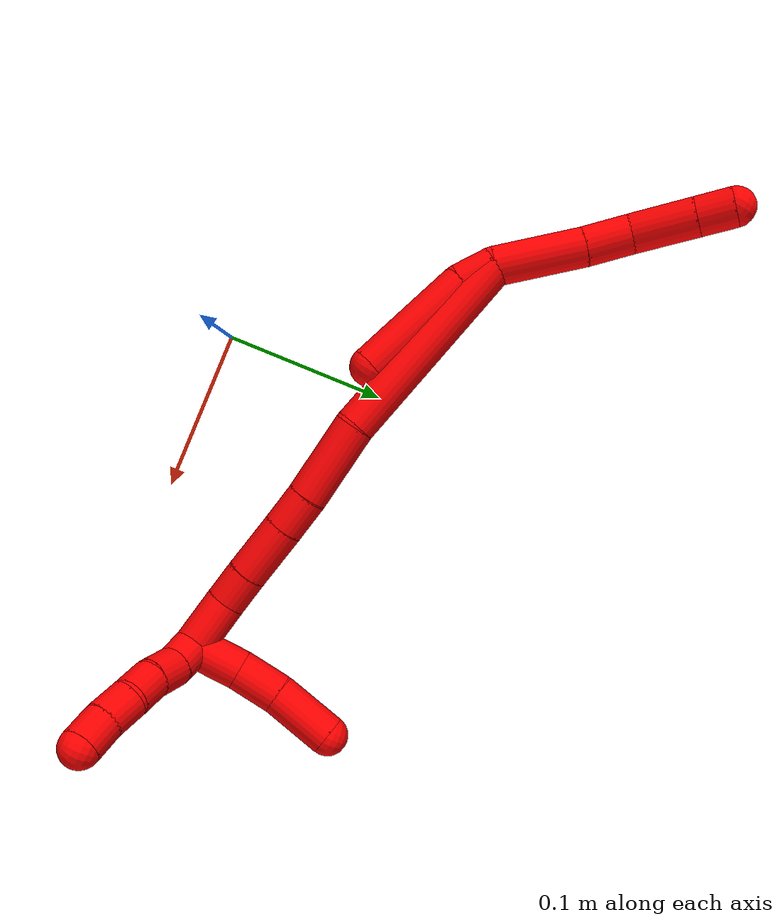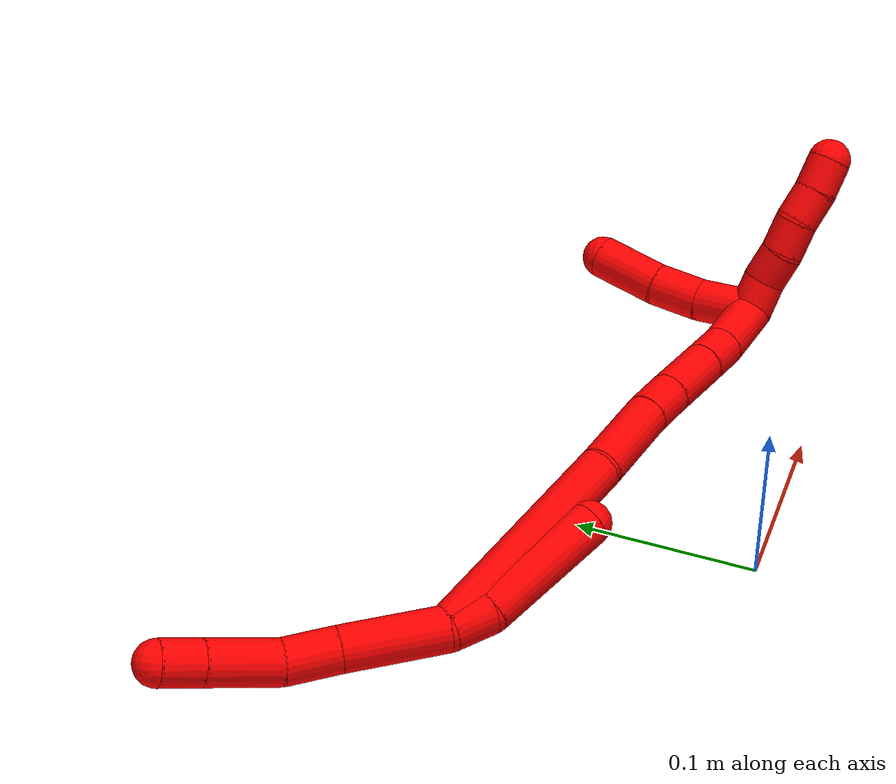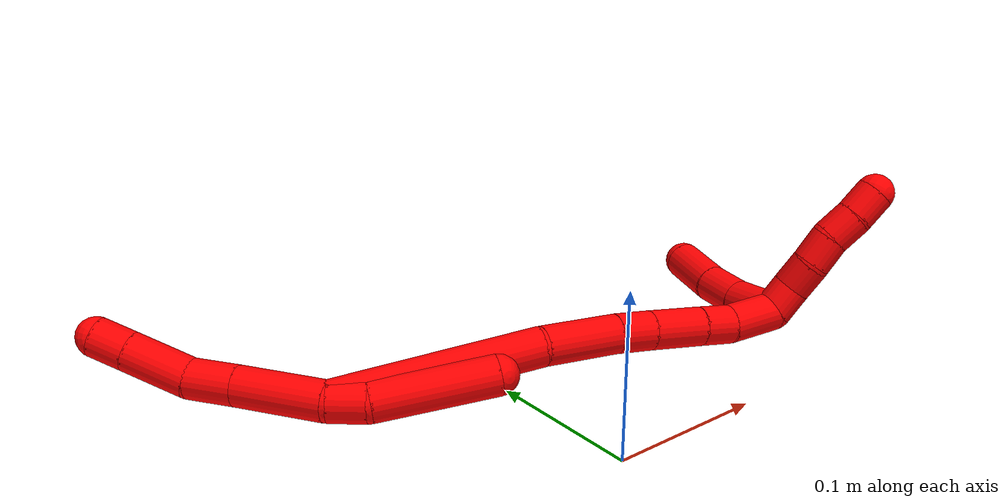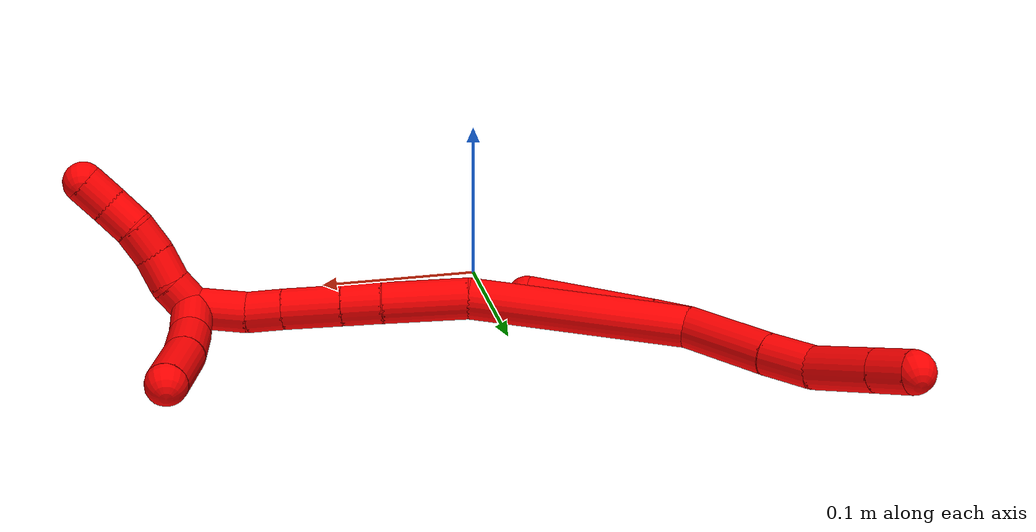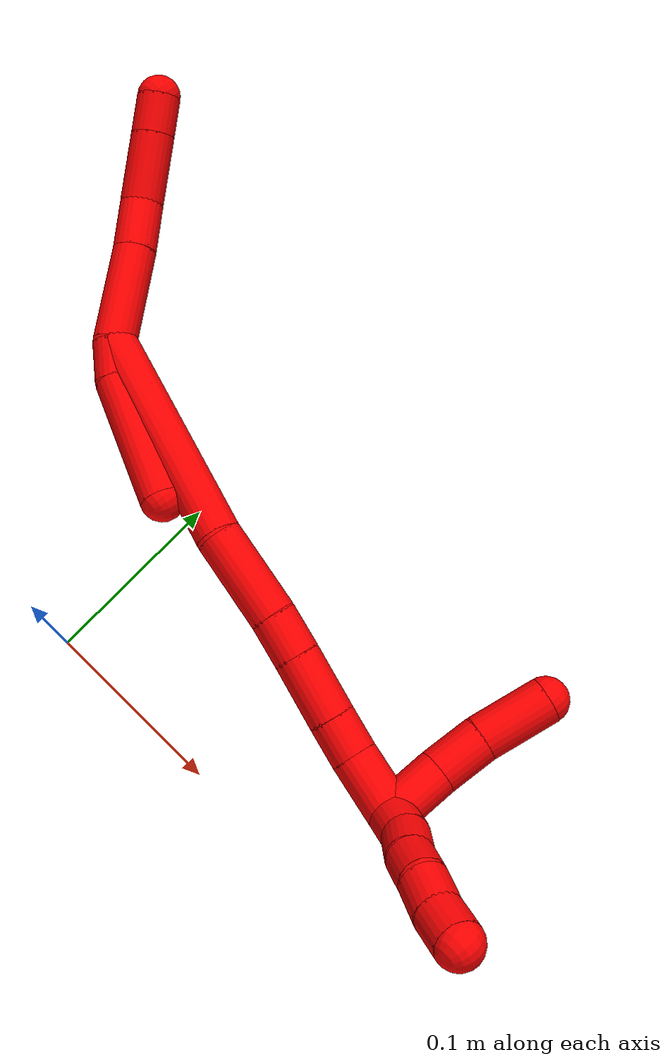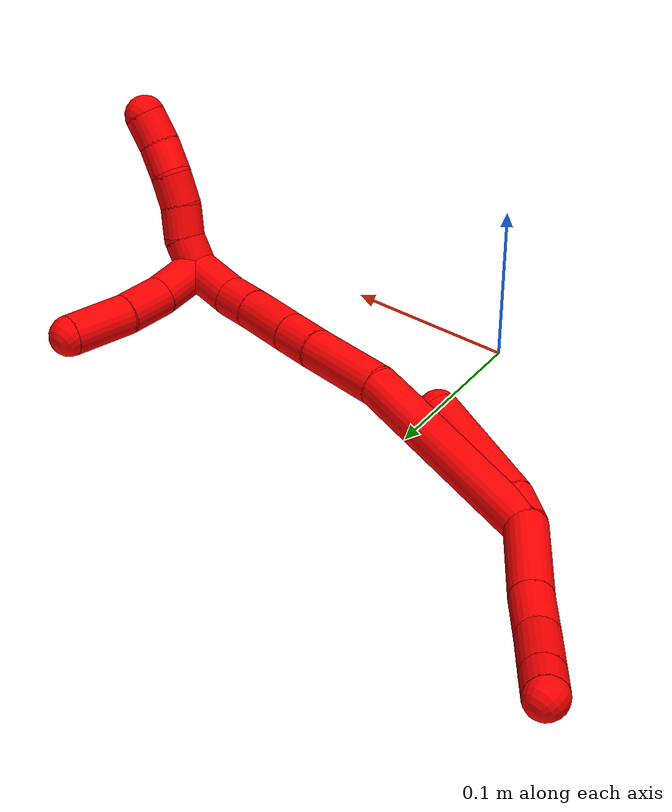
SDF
<sdf version="1.7">
 <world name="default">
  <model name="2">
   <static>0</static>
   <link name="2">
    <collision name="collision-cylinder-e_1_2_8">
     <pose>-0.018884 0.00276 0.021016 -0.130586 -0.727777 0.049794</pose>
     <geometry><cylinder><radius>0.0125</radius><length>0.056776</length></cylinder></geometry>
     <surface>
      <friction><ode><mu>1.16</mu><mu2>1.16</mu2><slip1>0</slip1><slip2>0</slip2></ode></friction>
      <contact><ode><kp>1e+06</kp><kd>1</kd><max_vel>0</max_vel><min_depth>0.001</min_depth></ode></contact>
     </surface>
    </collision>
    <visual name="visual-cylinder-e_1_2_8">
     <pose>-0.018884 0.00276 0.021016 -0.130586 -0.727777 0.049794</pose>
     <geometry><cylinder><radius>0.0125</radius><length>0.056776</length></cylinder></geometry>
     <material><ambient>1 0 0 1</ambient></material>
    </visual>
    <collision name="collision-cylinder-e_2_8_9">
     <pose>-0.048267 0.007197 0.052517 -0.158539 -0.779675 0.065252</pose>
     <geometry><cylinder><radius>0.0125</radius><length>0.029865</length></cylinder></geometry>
     <surface>
      <friction><ode><mu>1.16</mu><mu2>1.16</mu2><slip1>0</slip1><slip2>0</slip2></ode></friction>
      <contact><ode><kp>1e+06</kp><kd>1</kd><max_vel>0</max_vel><min_depth>0.001</min_depth></ode></contact>
     </surface>
    </collision>
    <visual name="visual-cylinder-e_2_8_9">
     <pose>-0.048267 0.007197 0.052517 -0.158539 -0.779675 0.065252</pose>
     <geometry><cylinder><radius>0.0125</radius><length>0.029865</length></cylinder></geometry>
     <material><ambient>1 0 0 1</ambient></material>
    </visual>
    <collision name="collision-cylinder-e_3_9_10">
     <pose>-0.074239 0.006162 0.075916 0.206974 -0.864779 -0.095791</pose>
     <geometry><cylinder><radius>0.0125</radius><length>0.040671</length></cylinder></geometry>
     <surface>
      <friction><ode><mu>1.16</mu><mu2>1.16</mu2><slip1>0</slip1><slip2>0</slip2></ode></friction>
      <contact><ode><kp>1e+06</kp><kd>1</kd><max_vel>0</max_vel><min_depth>0.001</min_depth></ode></contact>
     </surface>
    </collision>
    <visual name="visual-cylinder-e_3_9_10">
     <pose>-0.074239 0.006162 0.075916 0.206974 -0.864779 -0.095791</pose>
     <geometry><cylinder><radius>0.0125</radius><length>0.040671</length></cylinder></geometry>
     <material><ambient>1 0 0 1</ambient></material>
    </visual>
    <collision name="collision-cylinder-e_4_10_6">
     <pose>-0.098358 0.001971 0.096023 0.202808 -0.86649 -0.094063</pose>
     <geometry><cylinder><radius>0.0125</radius><length>0.022687</length></cylinder></geometry>
     <surface>
      <friction><ode><mu>1.16</mu><mu2>1.16</mu2><slip1>0</slip1><slip2>0</slip2></ode></friction>
      <contact><ode><kp>1e+06</kp><kd>1</kd><max_vel>0</max_vel><min_depth>0.001</min_depth></ode></contact>
     </surface>
    </collision>
    <visual name="visual-cylinder-e_4_10_6">
     <pose>-0.098358 0.001971 0.096023 0.202808 -0.86649 -0.094063</pose>
     <geometry><cylinder><radius>0.0125</radius><length>0.022687</length></cylinder></geometry>
     <material><ambient>1 0 0 1</ambient></material>
    </visual>
    <collision name="collision-cylinder-e_1_2_11">
     <pose>0.009328 -0.002888 -0.006593 2.72868 0.913598 2.3359</pose>
     <geometry><cylinder><radius>0.0125</radius><length>0.023563</length></cylinder></geometry>
     <surface>
      <friction><ode><mu>1.16</mu><mu2>1.16</mu2><slip1>0</slip1><slip2>0</slip2></ode></friction>
      <contact><ode><kp>1e+06</kp><kd>1</kd><max_vel>0</max_vel><min_depth>0.001</min_depth></ode></contact>
     </surface>
    </collision>
    <visual name="visual-cylinder-e_1_2_11">
     <pose>0.009328 -0.002888 -0.006593 2.72868 0.913598 2.3359</pose>
     <geometry><cylinder><radius>0.0125</radius><length>0.023563</length></cylinder></geometry>
     <material><ambient>1 0 0 1</ambient></material>
    </visual>
    <collision name="collision-cylinder-e_2_11_5">
     <pose>0.049796 -0.023275 -0.026775 2.23115 0.952407 1.62307</pose>
     <geometry><cylinder><radius>0.0125</radius><length>0.076437</length></cylinder></geometry>
     <surface>
      <friction><ode><mu>1.16</mu><mu2>1.16</mu2><slip1>0</slip1><slip2>0</slip2></ode></friction>
      <contact><ode><kp>1e+06</kp><kd>1</kd><max_vel>0</max_vel><min_depth>0.001</min_depth></ode></contact>
     </surface>
    </collision>
    <visual name="visual-cylinder-e_2_11_5">
     <pose>0.049796 -0.023275 -0.026775 2.23115 0.952407 1.62307</pose>
     <geometry><cylinder><radius>0.0125</radius><length>0.076437</length></cylinder></geometry>
     <material><ambient>1 0 0 1</ambient></material>
    </visual>
    <collision name="collision-cylinder-e_1_2_12">
     <pose>0.054885 -0.032294 -0.016743 2.04911 0.985502 1.44689</pose>
     <geometry><cylinder><radius>0.0125</radius><length>0.131691</length></cylinder></geometry>
     <surface>
      <friction><ode><mu>1.16</mu><mu2>1.16</mu2><slip1>0</slip1><slip2>0</slip2></ode></friction>
      <contact><ode><kp>1e+06</kp><kd>1</kd><max_vel>0</max_vel><min_depth>0.001</min_depth></ode></contact>
     </surface>
    </collision>
    <visual name="visual-cylinder-e_1_2_12">
     <pose>0.054885 -0.032294 -0.016743 2.04911 0.985502 1.44689</pose>
     <geometry><cylinder><radius>0.0125</radius><length>0.131691</length></cylinder></geometry>
     <material><ambient>1 0 0 1</ambient></material>
    </visual>
    <collision name="collision-cylinder-e_2_12_13">
     <pose>0.133276 -0.075034 -0.036201 1.82505 1.14029 1.38447</pose>
     <geometry><cylinder><radius>0.0125</radius><length>0.05173</length></cylinder></geometry>
     <surface>
      <friction><ode><mu>1.16</mu><mu2>1.16</mu2><slip1>0</slip1><slip2>0</slip2></ode></friction>
      <contact><ode><kp>1e+06</kp><kd>1</kd><max_vel>0</max_vel><min_depth>0.001</min_depth></ode></contact>
     </surface>
    </collision>
    <visual name="visual-cylinder-e_2_12_13">
     <pose>0.133276 -0.075034 -0.036201 1.82505 1.14029 1.38447</pose>
     <geometry><cylinder><radius>0.0125</radius><length>0.05173</length></cylinder></geometry>
     <material><ambient>1 0 0 1</ambient></material>
    </visual>
    <collision name="collision-cylinder-e_3_13_14">
     <pose>0.16799 -0.089754 -0.040778 1.98169 1.1768 1.58916</pose>
     <geometry><cylinder><radius>0.0125</radius><length>0.024279</length></cylinder></geometry>
     <surface>
      <friction><ode><mu>1.16</mu><mu2>1.16</mu2><slip1>0</slip1><slip2>0</slip2></ode></friction>
      <contact><ode><kp>1e+06</kp><kd>1</kd><max_vel>0</max_vel><min_depth>0.001</min_depth></ode></contact>
     </surface>
    </collision>
    <visual name="visual-cylinder-e_3_13_14">
     <pose>0.16799 -0.089754 -0.040778 1.98169 1.1768 1.58916</pose>
     <geometry><cylinder><radius>0.0125</radius><length>0.024279</length></cylinder></geometry>
     <material><ambient>1 0 0 1</ambient></material>
    </visual>
    <collision name="collision-cylinder-e_4_14_15">
     <pose>0.195934 -0.100169 -0.045661 2.02798 1.18244 1.64621</pose>
     <geometry><cylinder><radius>0.0125</radius><length>0.036161</length></cylinder></geometry>
     <surface>
      <friction><ode><mu>1.16</mu><mu2>1.16</mu2><slip1>0</slip1><slip2>0</slip2></ode></friction>
      <contact><ode><kp>1e+06</kp><kd>1</kd><max_vel>0</max_vel><min_depth>0.001</min_depth></ode></contact>
     </surface>
    </collision>
    <visual name="visual-cylinder-e_4_14_15">
     <pose>0.195934 -0.100169 -0.045661 2.02798 1.18244 1.64621</pose>
     <geometry><cylinder><radius>0.0125</radius><length>0.036161</length></cylinder></geometry>
     <material><ambient>1 0 0 1</ambient></material>
    </visual>
    <collision name="collision-cylinder-e_5_15_16">
     <pose>0.223148 -0.110002 -0.050304 1.98471 1.20374 1.62146</pose>
     <geometry><cylinder><radius>0.0125</radius><length>0.022455</length></cylinder></geometry>
     <surface>
      <friction><ode><mu>1.16</mu><mu2>1.16</mu2><slip1>0</slip1><slip2>0</slip2></ode></friction>
      <contact><ode><kp>1e+06</kp><kd>1</kd><max_vel>0</max_vel><min_depth>0.001</min_depth></ode></contact>
     </surface>
    </collision>
    <visual name="visual-cylinder-e_5_15_16">
     <pose>0.223148 -0.110002 -0.050304 1.98471 1.20374 1.62146</pose>
     <geometry><cylinder><radius>0.0125</radius><length>0.022455</length></cylinder></geometry>
     <material><ambient>1 0 0 1</ambient></material>
    </visual>
    <collision name="collision-cylinder-e_6_16_1">
     <pose>0.247827 -0.122259 -0.05486 1.90085 1.00302 1.30906</pose>
     <geometry><cylinder><radius>0.0125</radius><length>0.033684</length></cylinder></geometry>
     <surface>
      <friction><ode><mu>1.16</mu><mu2>1.16</mu2><slip1>0</slip1><slip2>0</slip2></ode></friction>
      <contact><ode><kp>1e+06</kp><kd>1</kd><max_vel>0</max_vel><min_depth>0.001</min_depth></ode></contact>
     </surface>
    </collision>
    <visual name="visual-cylinder-e_6_16_1">
     <pose>0.247827 -0.122259 -0.05486 1.90085 1.00302 1.30906</pose>
     <geometry><cylinder><radius>0.0125</radius><length>0.033684</length></cylinder></geometry>
     <material><ambient>1 0 0 1</ambient></material>
    </visual>
    <collision name="collision-cylinder-e_1_1_17">
     <pose>0.261109 -0.133536 -0.042021 0.170088 -0.057248 -0.004882</pose>
     <geometry><cylinder><radius>0.0125</radius><length>0.032063</length></cylinder></geometry>
     <surface>
      <friction><ode><mu>1.16</mu><mu2>1.16</mu2><slip1>0</slip1><slip2>0</slip2></ode></friction>
      <contact><ode><kp>1e+06</kp><kd>1</kd><max_vel>0</max_vel><min_depth>0.001</min_depth></ode></contact>
     </surface>
    </collision>
    <visual name="visual-cylinder-e_1_1_17">
     <pose>0.261109 -0.133536 -0.042021 0.170088 -0.057248 -0.004882</pose>
     <geometry><cylinder><radius>0.0125</radius><length>0.032063</length></cylinder></geometry>
     <material><ambient>1 0 0 1</ambient></material>
    </visual>
    <collision name="collision-cylinder-e_2_17_18">
     <pose>0.259291 -0.140498 -0.012809 0.306539 -0.063838 -0.009865</pose>
     <geometry><cylinder><radius>0.0125</radius><length>0.028245</length></cylinder></geometry>
     <surface>
      <friction><ode><mu>1.16</mu><mu2>1.16</mu2><slip1>0</slip1><slip2>0</slip2></ode></friction>
      <contact><ode><kp>1e+06</kp><kd>1</kd><max_vel>0</max_vel><min_depth>0.001</min_depth></ode></contact>
     </surface>
    </collision>
    <visual name="visual-cylinder-e_2_17_18">
     <pose>0.259291 -0.140498 -0.012809 0.306539 -0.063838 -0.009865</pose>
     <geometry><cylinder><radius>0.0125</radius><length>0.028245</length></cylinder></geometry>
     <material><ambient>1 0 0 1</ambient></material>
    </visual>
    <collision name="collision-cylinder-e_3_18_4">
     <pose>0.258758 -0.152534 0.01888 0.403055 0.018541 0.003788</pose>
     <geometry><cylinder><radius>0.0125</radius><length>0.039692</length></cylinder></geometry>
     <surface>
      <friction><ode><mu>1.16</mu><mu2>1.16</mu2><slip1>0</slip1><slip2>0</slip2></ode></friction>
      <contact><ode><kp>1e+06</kp><kd>1</kd><max_vel>0</max_vel><min_depth>0.001</min_depth></ode></contact>
     </surface>
    </collision>
    <visual name="visual-cylinder-e_3_18_4">
     <pose>0.258758 -0.152534 0.01888 0.403055 0.018541 0.003788</pose>
     <geometry><cylinder><radius>0.0125</radius><length>0.039692</length></cylinder></geometry>
     <material><ambient>1 0 0 1</ambient></material>
    </visual>
    <collision name="collision-cylinder-e_1_1_19">
     <pose>0.264151 -0.139897 -0.061429 1.95186 0.214137 0.315061</pose>
     <geometry><cylinder><radius>0.0125</radius><length>0.02</length></cylinder></geometry>
     <surface>
      <friction><ode><mu>1.16</mu><mu2>1.16</mu2><slip1>0</slip1><slip2>0</slip2></ode></friction>
      <contact><ode><kp>1e+06</kp><kd>1</kd><max_vel>0</max_vel><min_depth>0.001</min_depth></ode></contact>
     </surface>
    </collision>
    <visual name="visual-cylinder-e_1_1_19">
     <pose>0.264151 -0.139897 -0.061429 1.95186 0.214137 0.315061</pose>
     <geometry><cylinder><radius>0.0125</radius><length>0.02</length></cylinder></geometry>
     <material><ambient>1 0 0 1</ambient></material>
    </visual>
    <collision name="collision-cylinder-e_2_19_20">
     <pose>0.266509 -0.157258 -0.070651 2.16387 0.023292 0.043784</pose>
     <geometry><cylinder><radius>0.0125</radius><length>0.02</length></cylinder></geometry>
     <surface>
      <friction><ode><mu>1.16</mu><mu2>1.16</mu2><slip1>0</slip1><slip2>0</slip2></ode></friction>
      <contact><ode><kp>1e+06</kp><kd>1</kd><max_vel>0</max_vel><min_depth>0.001</min_depth></ode></contact>
     </surface>
    </collision>
    <visual name="visual-cylinder-e_2_19_20">
     <pose>0.266509 -0.157258 -0.070651 2.16387 0.023292 0.043784</pose>
     <geometry><cylinder><radius>0.0125</radius><length>0.02</length></cylinder></geometry>
     <material><ambient>1 0 0 1</ambient></material>
    </visual>
    <collision name="collision-cylinder-e_3_20_21">
     <pose>0.267968 -0.174587 -0.080338 1.99659 0.122932 0.190401</pose>
     <geometry><cylinder><radius>0.0125</radius><length>0.02</length></cylinder></geometry>
     <surface>
      <friction><ode><mu>1.16</mu><mu2>1.16</mu2><slip1>0</slip1><slip2>0</slip2></ode></friction>
      <contact><ode><kp>1e+06</kp><kd>1</kd><max_vel>0</max_vel><min_depth>0.001</min_depth></ode></contact>
     </surface>
    </collision>
    <visual name="visual-cylinder-e_3_20_21">
     <pose>0.267968 -0.174587 -0.080338 1.99659 0.122932 0.190401</pose>
     <geometry><cylinder><radius>0.0125</radius><length>0.02</length></cylinder></geometry>
     <material><ambient>1 0 0 1</ambient></material>
    </visual>
    <collision name="collision-cylinder-e_4_21_22">
     <pose>0.272561 -0.191908 -0.088916 2.06656 0.343337 0.566117</pose>
     <geometry><cylinder><radius>0.0125</radius><length>0.02</length></cylinder></geometry>
     <surface>
      <friction><ode><mu>1.16</mu><mu2>1.16</mu2><slip1>0</slip1><slip2>0</slip2></ode></friction>
      <contact><ode><kp>1e+06</kp><kd>1</kd><max_vel>0</max_vel><min_depth>0.001</min_depth></ode></contact>
     </surface>
    </collision>
    <visual name="visual-cylinder-e_4_21_22">
     <pose>0.272561 -0.191908 -0.088916 2.06656 0.343337 0.566117</pose>
     <geometry><cylinder><radius>0.0125</radius><length>0.02</length></cylinder></geometry>
     <material><ambient>1 0 0 1</ambient></material>
    </visual>
    <collision name="collision-cylinder-e_5_22_3">
     <pose>0.278946 -0.209127 -0.096714 1.92637 0.306716 0.437463</pose>
     <geometry><cylinder><radius>0.0125</radius><length>0.02</length></cylinder></geometry>
     <surface>
      <friction><ode><mu>1.16</mu><mu2>1.16</mu2><slip1>0</slip1><slip2>0</slip2></ode></friction>
      <contact><ode><kp>1e+06</kp><kd>1</kd><max_vel>0</max_vel><min_depth>0.001</min_depth></ode></contact>
     </surface>
    </collision>
    <visual name="visual-cylinder-e_5_22_3">
     <pose>0.278946 -0.209127 -0.096714 1.92637 0.306716 0.437463</pose>
     <geometry><cylinder><radius>0.0125</radius><length>0.02</length></cylinder></geometry>
     <material><ambient>1 0 0 1</ambient></material>
    </visual>
    <collision name="collision-sphere-3">
     <pose>0.281966 -0.218064 -0.100033 0 -0 0</pose>
     <geometry><sphere><radius>0.0125</radius></sphere></geometry>
     <surface>
      <friction><ode><mu>1.16</mu><mu2>1.16</mu2><slip1>0</slip1><slip2>0</slip2></ode></friction>
      <contact><ode><kp>1e+06</kp><kd>1</kd><max_vel>0</max_vel><min_depth>0.001</min_depth></ode></contact>
     </surface>
    </collision>
    <visual name="visual-sphere-3">
     <pose>0.281966 -0.218064 -0.100033 0 -0 0</pose>
     <geometry><sphere><radius>0.0125</radius></sphere></geometry>
     <material><ambient>1 0 0 1</ambient></material>
    </visual>
    <collision name="collision-sphere-22">
     <pose>0.275927 -0.20019 -0.093396 0 -0 0</pose>
     <geometry><sphere><radius>0.0125</radius></sphere></geometry>
     <surface>
      <friction><ode><mu>1.16</mu><mu2>1.16</mu2><slip1>0</slip1><slip2>0</slip2></ode></friction>
      <contact><ode><kp>1e+06</kp><kd>1</kd><max_vel>0</max_vel><min_depth>0.001</min_depth></ode></contact>
     </surface>
    </collision>
    <visual name="visual-sphere-22">
     <pose>0.275927 -0.20019 -0.093396 0 -0 0</pose>
     <geometry><sphere><radius>0.0125</radius></sphere></geometry>
     <material><ambient>1 0 0 1</ambient></material>
    </visual>
    <collision name="collision-sphere-21">
     <pose>0.269195 -0.183625 -0.084437 0 -0 0</pose>
     <geometry><sphere><radius>0.0125</radius></sphere></geometry>
     <surface>
      <friction><ode><mu>1.16</mu><mu2>1.16</mu2><slip1>0</slip1><slip2>0</slip2></ode></friction>
      <contact><ode><kp>1e+06</kp><kd>1</kd><max_vel>0</max_vel><min_depth>0.001</min_depth></ode></contact>
     </surface>
    </collision>
    <visual name="visual-sphere-21">
     <pose>0.269195 -0.183625 -0.084437 0 -0 0</pose>
     <geometry><sphere><radius>0.0125</radius></sphere></geometry>
     <material><ambient>1 0 0 1</ambient></material>
    </visual>
    <collision name="collision-sphere-20">
     <pose>0.266742 -0.165548 -0.076238 0 -0 0</pose>
     <geometry><sphere><radius>0.0125</radius></sphere></geometry>
     <surface>
      <friction><ode><mu>1.16</mu><mu2>1.16</mu2><slip1>0</slip1><slip2>0</slip2></ode></friction>
      <contact><ode><kp>1e+06</kp><kd>1</kd><max_vel>0</max_vel><min_depth>0.001</min_depth></ode></contact>
     </surface>
    </collision>
    <visual name="visual-sphere-20">
     <pose>0.266742 -0.165548 -0.076238 0 -0 0</pose>
     <geometry><sphere><radius>0.0125</radius></sphere></geometry>
     <material><ambient>1 0 0 1</ambient></material>
    </visual>
    <collision name="collision-sphere-19">
     <pose>0.266276 -0.148968 -0.065063 0 -0 0</pose>
     <geometry><sphere><radius>0.0125</radius></sphere></geometry>
     <surface>
      <friction><ode><mu>1.16</mu><mu2>1.16</mu2><slip1>0</slip1><slip2>0</slip2></ode></friction>
      <contact><ode><kp>1e+06</kp><kd>1</kd><max_vel>0</max_vel><min_depth>0.001</min_depth></ode></contact>
     </surface>
    </collision>
    <visual name="visual-sphere-19">
     <pose>0.266276 -0.148968 -0.065063 0 -0 0</pose>
     <geometry><sphere><radius>0.0125</radius></sphere></geometry>
     <material><ambient>1 0 0 1</ambient></material>
    </visual>
    <collision name="collision-sphere-11">
     <pose>0.018655 -0.005776 -0.013185 0 -0 0</pose>
     <geometry><sphere><radius>0.0125</radius></sphere></geometry>
     <surface>
      <friction><ode><mu>1.16</mu><mu2>1.16</mu2><slip1>0</slip1><slip2>0</slip2></ode></friction>
      <contact><ode><kp>1e+06</kp><kd>1</kd><max_vel>0</max_vel><min_depth>0.001</min_depth></ode></contact>
     </surface>
    </collision>
    <visual name="visual-sphere-11">
     <pose>0.018655 -0.005776 -0.013185 0 -0 0</pose>
     <geometry><sphere><radius>0.0125</radius></sphere></geometry>
     <material><ambient>1 0 0 1</ambient></material>
    </visual>
    <collision name="collision-sphere-6">
     <pose>-0.107003 0.000492 0.103217 0 -0 0</pose>
     <geometry><sphere><radius>0.0125</radius></sphere></geometry>
     <surface>
      <friction><ode><mu>1.16</mu><mu2>1.16</mu2><slip1>0</slip1><slip2>0</slip2></ode></friction>
      <contact><ode><kp>1e+06</kp><kd>1</kd><max_vel>0</max_vel><min_depth>0.001</min_depth></ode></contact>
     </surface>
    </collision>
    <visual name="visual-sphere-6">
     <pose>-0.107003 0.000492 0.103217 0 -0 0</pose>
     <geometry><sphere><radius>0.0125</radius></sphere></geometry>
     <material><ambient>1 0 0 1</ambient></material>
    </visual>
    <collision name="collision-sphere-10">
     <pose>-0.089714 0.00345 0.088828 0 -0 0</pose>
     <geometry><sphere><radius>0.0125</radius></sphere></geometry>
     <surface>
      <friction><ode><mu>1.16</mu><mu2>1.16</mu2><slip1>0</slip1><slip2>0</slip2></ode></friction>
      <contact><ode><kp>1e+06</kp><kd>1</kd><max_vel>0</max_vel><min_depth>0.001</min_depth></ode></contact>
     </surface>
    </collision>
    <visual name="visual-sphere-10">
     <pose>-0.089714 0.00345 0.088828 0 -0 0</pose>
     <geometry><sphere><radius>0.0125</radius></sphere></geometry>
     <material><ambient>1 0 0 1</ambient></material>
    </visual>
    <collision name="collision-sphere-9">
     <pose>-0.058765 0.008873 0.063004 0 -0 0</pose>
     <geometry><sphere><radius>0.0125</radius></sphere></geometry>
     <surface>
      <friction><ode><mu>1.16</mu><mu2>1.16</mu2><slip1>0</slip1><slip2>0</slip2></ode></friction>
      <contact><ode><kp>1e+06</kp><kd>1</kd><max_vel>0</max_vel><min_depth>0.001</min_depth></ode></contact>
     </surface>
    </collision>
    <visual name="visual-sphere-9">
     <pose>-0.058765 0.008873 0.063004 0 -0 0</pose>
     <geometry><sphere><radius>0.0125</radius></sphere></geometry>
     <material><ambient>1 0 0 1</ambient></material>
    </visual>
    <collision name="collision-sphere-2">
     <geometry><sphere><radius>0.0125</radius></sphere></geometry>
     <surface>
      <friction><ode><mu>1.16</mu><mu2>1.16</mu2><slip1>0</slip1><slip2>0</slip2></ode></friction>
      <contact><ode><kp>1e+06</kp><kd>1</kd><max_vel>0</max_vel><min_depth>0.001</min_depth></ode></contact>
     </surface>
    </collision>
    <visual name="visual-sphere-2">
     <geometry><sphere><radius>0.0125</radius></sphere></geometry>
     <material><ambient>1 0 0 1</ambient></material>
    </visual>
    <collision name="collision-sphere-8">
     <pose>-0.037768 0.00552 0.042031 0 -0 0</pose>
     <geometry><sphere><radius>0.0125</radius></sphere></geometry>
     <surface>
      <friction><ode><mu>1.16</mu><mu2>1.16</mu2><slip1>0</slip1><slip2>0</slip2></ode></friction>
      <contact><ode><kp>1e+06</kp><kd>1</kd><max_vel>0</max_vel><min_depth>0.001</min_depth></ode></contact>
     </surface>
    </collision>
    <visual name="visual-sphere-8">
     <pose>-0.037768 0.00552 0.042031 0 -0 0</pose>
     <geometry><sphere><radius>0.0125</radius></sphere></geometry>
     <material><ambient>1 0 0 1</ambient></material>
    </visual>
    <collision name="collision-sphere-5">
     <pose>0.080937 -0.040773 -0.040366 0 -0 0</pose>
     <geometry><sphere><radius>0.0125</radius></sphere></geometry>
     <surface>
      <friction><ode><mu>1.16</mu><mu2>1.16</mu2><slip1>0</slip1><slip2>0</slip2></ode></friction>
      <contact><ode><kp>1e+06</kp><kd>1</kd><max_vel>0</max_vel><min_depth>0.001</min_depth></ode></contact>
     </surface>
    </collision>
    <visual name="visual-sphere-5">
     <pose>0.080937 -0.040773 -0.040366 0 -0 0</pose>
     <geometry><sphere><radius>0.0125</radius></sphere></geometry>
     <material><ambient>1 0 0 1</ambient></material>
    </visual>
    <collision name="collision-sphere-12">
     <pose>0.109771 -0.064587 -0.033486 0 -0 0</pose>
     <geometry><sphere><radius>0.0125</radius></sphere></geometry>
     <surface>
      <friction><ode><mu>1.16</mu><mu2>1.16</mu2><slip1>0</slip1><slip2>0</slip2></ode></friction>
      <contact><ode><kp>1e+06</kp><kd>1</kd><max_vel>0</max_vel><min_depth>0.001</min_depth></ode></contact>
     </surface>
    </collision>
    <visual name="visual-sphere-12">
     <pose>0.109771 -0.064587 -0.033486 0 -0 0</pose>
     <geometry><sphere><radius>0.0125</radius></sphere></geometry>
     <material><ambient>1 0 0 1</ambient></material>
    </visual>
    <collision name="collision-sphere-13">
     <pose>0.156781 -0.085482 -0.038916 0 -0 0</pose>
     <geometry><sphere><radius>0.0125</radius></sphere></geometry>
     <surface>
      <friction><ode><mu>1.16</mu><mu2>1.16</mu2><slip1>0</slip1><slip2>0</slip2></ode></friction>
      <contact><ode><kp>1e+06</kp><kd>1</kd><max_vel>0</max_vel><min_depth>0.001</min_depth></ode></contact>
     </surface>
    </collision>
    <visual name="visual-sphere-13">
     <pose>0.156781 -0.085482 -0.038916 0 -0 0</pose>
     <geometry><sphere><radius>0.0125</radius></sphere></geometry>
     <material><ambient>1 0 0 1</ambient></material>
    </visual>
    <collision name="collision-sphere-14">
     <pose>0.1792 -0.094026 -0.042639 0 -0 0</pose>
     <geometry><sphere><radius>0.0125</radius></sphere></geometry>
     <surface>
      <friction><ode><mu>1.16</mu><mu2>1.16</mu2><slip1>0</slip1><slip2>0</slip2></ode></friction>
      <contact><ode><kp>1e+06</kp><kd>1</kd><max_vel>0</max_vel><min_depth>0.001</min_depth></ode></contact>
     </surface>
    </collision>
    <visual name="visual-sphere-14">
     <pose>0.1792 -0.094026 -0.042639 0 -0 0</pose>
     <geometry><sphere><radius>0.0125</radius></sphere></geometry>
     <material><ambient>1 0 0 1</ambient></material>
    </visual>
    <collision name="collision-sphere-15">
     <pose>0.212668 -0.106313 -0.048683 0 -0 0</pose>
     <geometry><sphere><radius>0.0125</radius></sphere></geometry>
     <surface>
      <friction><ode><mu>1.16</mu><mu2>1.16</mu2><slip1>0</slip1><slip2>0</slip2></ode></friction>
      <contact><ode><kp>1e+06</kp><kd>1</kd><max_vel>0</max_vel><min_depth>0.001</min_depth></ode></contact>
     </surface>
    </collision>
    <visual name="visual-sphere-15">
     <pose>0.212668 -0.106313 -0.048683 0 -0 0</pose>
     <geometry><sphere><radius>0.0125</radius></sphere></geometry>
     <material><ambient>1 0 0 1</ambient></material>
    </visual>
    <collision name="collision-sphere-16">
     <pose>0.233627 -0.113691 -0.051924 0 -0 0</pose>
     <geometry><sphere><radius>0.0125</radius></sphere></geometry>
     <surface>
      <friction><ode><mu>1.16</mu><mu2>1.16</mu2><slip1>0</slip1><slip2>0</slip2></ode></friction>
      <contact><ode><kp>1e+06</kp><kd>1</kd><max_vel>0</max_vel><min_depth>0.001</min_depth></ode></contact>
     </surface>
    </collision>
    <visual name="visual-sphere-16">
     <pose>0.233627 -0.113691 -0.051924 0 -0 0</pose>
     <geometry><sphere><radius>0.0125</radius></sphere></geometry>
     <material><ambient>1 0 0 1</ambient></material>
    </visual>
    <collision name="collision-sphere-1">
     <pose>0.262026 -0.130827 -0.057795 0 -0 0</pose>
     <geometry><sphere><radius>0.0125</radius></sphere></geometry>
     <surface>
      <friction><ode><mu>1.16</mu><mu2>1.16</mu2><slip1>0</slip1><slip2>0</slip2></ode></friction>
      <contact><ode><kp>1e+06</kp><kd>1</kd><max_vel>0</max_vel><min_depth>0.001</min_depth></ode></contact>
     </surface>
    </collision>
    <visual name="visual-sphere-1">
     <pose>0.262026 -0.130827 -0.057795 0 -0 0</pose>
     <geometry><sphere><radius>0.0125</radius></sphere></geometry>
     <material><ambient>1 0 0 1</ambient></material>
    </visual>
    <collision name="collision-sphere-18">
     <pose>0.25839 -0.144751 0.000627 0 -0 0</pose>
     <geometry><sphere><radius>0.0125</radius></sphere></geometry>
     <surface>
      <friction><ode><mu>1.16</mu><mu2>1.16</mu2><slip1>0</slip1><slip2>0</slip2></ode></friction>
      <contact><ode><kp>1e+06</kp><kd>1</kd><max_vel>0</max_vel><min_depth>0.001</min_depth></ode></contact>
     </surface>
    </collision>
    <visual name="visual-sphere-18">
     <pose>0.25839 -0.144751 0.000627 0 -0 0</pose>
     <geometry><sphere><radius>0.0125</radius></sphere></geometry>
     <material><ambient>1 0 0 1</ambient></material>
    </visual>
    <collision name="collision-sphere-17">
     <pose>0.260192 -0.136245 -0.026246 0 -0 0</pose>
     <geometry><sphere><radius>0.0125</radius></sphere></geometry>
     <surface>
      <friction><ode><mu>1.16</mu><mu2>1.16</mu2><slip1>0</slip1><slip2>0</slip2></ode></friction>
      <contact><ode><kp>1e+06</kp><kd>1</kd><max_vel>0</max_vel><min_depth>0.001</min_depth></ode></contact>
     </surface>
    </collision>
    <visual name="visual-sphere-17">
     <pose>0.260192 -0.136245 -0.026246 0 -0 0</pose>
     <geometry><sphere><radius>0.0125</radius></sphere></geometry>
     <material><ambient>1 0 0 1</ambient></material>
    </visual>
    <collision name="collision-sphere-4">
     <pose>0.259126 -0.160317 0.037132 0 -0 0</pose>
     <geometry><sphere><radius>0.0125</radius></sphere></geometry>
     <surface>
      <friction><ode><mu>1.16</mu><mu2>1.16</mu2><slip1>0</slip1><slip2>0</slip2></ode></friction>
      <contact><ode><kp>1e+06</kp><kd>1</kd><max_vel>0</max_vel><min_depth>0.001</min_depth></ode></contact>
     </surface>
    </collision>
    <visual name="visual-sphere-4">
     <pose>0.259126 -0.160317 0.037132 0 -0 0</pose>
     <geometry><sphere><radius>0.0125</radius></sphere></geometry>
     <material><ambient>1 0 0 1</ambient></material>
    </visual>
    <inertial>
     <pose>0.117167 -0.071285 -0.017055 0 -0 0</pose>
     <mass>0.75</mass>
     <inertia>
      <ixx>0.000219</ixx>
      <ixy>0</ixy>
      <ixz>0</ixz>
      <iyy>0.000346</iyy>
      <iyz>0</iyz>
      <izz>-6.2e-05</izz>
     </inertia>
    </inertial>
   </link>
   <pose>-0.101788 0.135677 0.012403 -1.89887 0.486365 -0.236066</pose>
  </model>
 </world>
</sdf>
